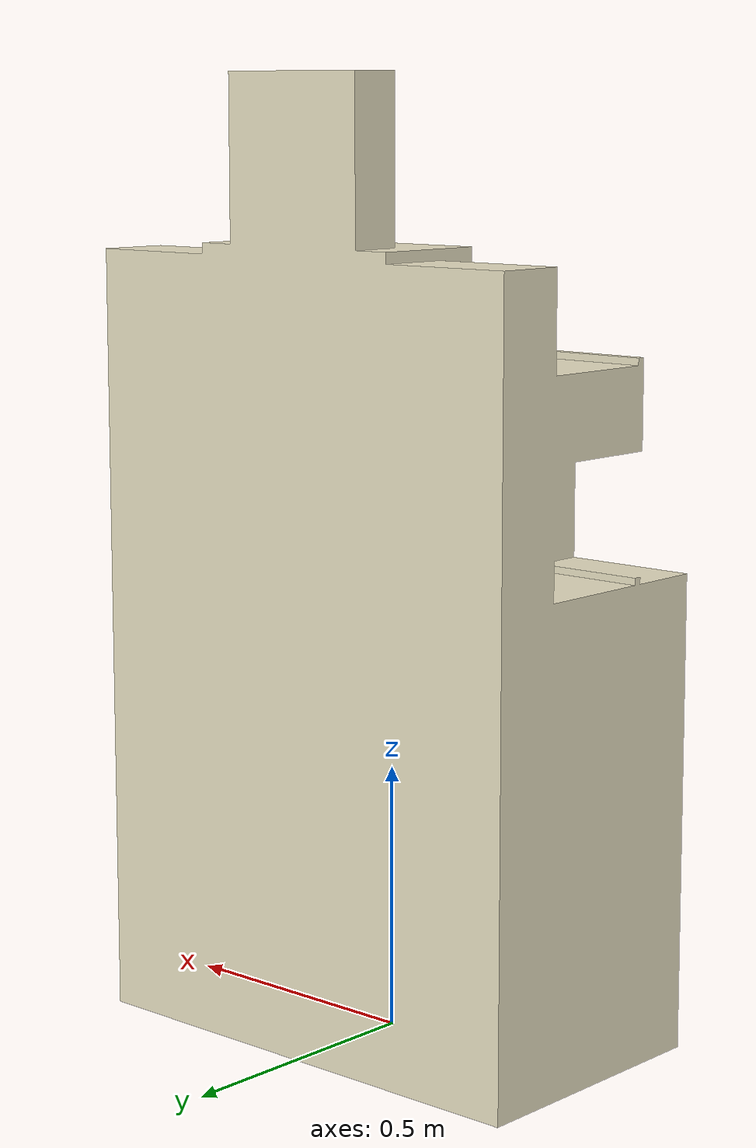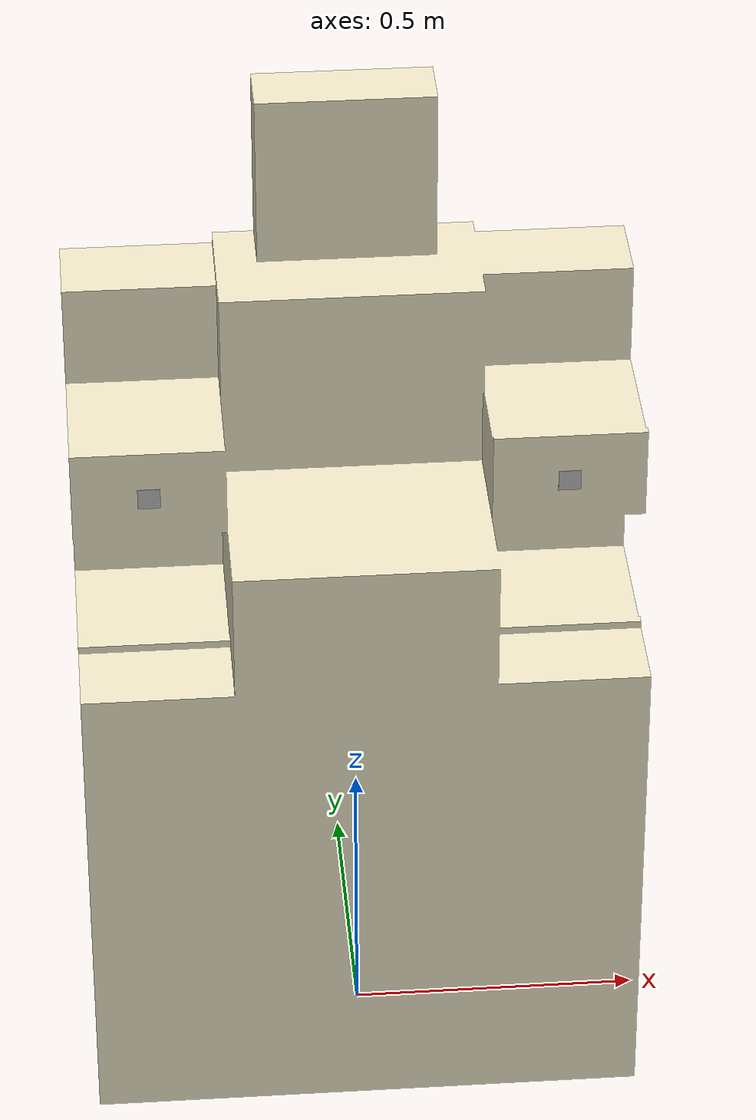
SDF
<?xml version='1.0'?>
<sdf version='1.7'>
  <model name='wirebonder'>
    <static>true</static>
    <pose>0 0 0 0 0 0</pose>
    <link name='wirebonder_link'>
      <pose>0 0 0 0 0 0</pose>
      <visual name='wirebonder_visual'>
        <geometry>
          <mesh>
            <uri>model://wirebonder/meshes/wirebonder.dae</uri>
          </mesh>
        </geometry>
      </visual>
      <visual name='aruco_G_L'>
        <pose>-0.348 -0.1205 1.2 1.5708 0 0</pose>
        <!-- 0.0375 = 0.03 tag + 1-module white quiet zone (texture is 640px =
             512 tag + 64 white each side); the BLACK tag stays 30 mm (TAG_SIZE_M). -->
        <geometry><box><size>0.0375 0.0375 0.001</size></box></geometry>
        <material><script>
          <uri>model://wirebonder/materials/scripts</uri>
          <uri>model://wirebonder/materials/textures</uri>
          <name>ArucoMarker/Marker0</name>
        </script></material>
      </visual>
      <visual name='aruco_G_R'>
        <pose>0.348 -0.1205 1.2 1.5708 0 0</pose>
        <!-- 0.0375 = 0.03 tag + 1-module white quiet zone (see aruco_G_L). -->
        <geometry><box><size>0.0375 0.0375 0.001</size></box></geometry>
        <material><script>
          <uri>model://wirebonder/materials/scripts</uri>
          <uri>model://wirebonder/materials/textures</uri>
          <name>ArucoMarker/Marker1</name>
        </script></material>
      </visual>
      <!-- per-part collision: one STL per box so the stepped recesses stay open -->
      <collision name='Cube_A'>
        <geometry><mesh><uri>model://wirebonder/collision/Cube_A.stl</uri></mesh></geometry>
      </collision>
      <collision name='Cube_B'>
        <geometry><mesh><uri>model://wirebonder/collision/Cube_B.stl</uri></mesh></geometry>
      </collision>
      <collision name='Cube_C'>
        <geometry><mesh><uri>model://wirebonder/collision/Cube_C.stl</uri></mesh></geometry>
      </collision>
      <collision name='Cube_D'>
        <geometry><mesh><uri>model://wirebonder/collision/Cube_D.stl</uri></mesh></geometry>
      </collision>
      <collision name='Cube_E'>
        <geometry><mesh><uri>model://wirebonder/collision/Cube_E.stl</uri></mesh></geometry>
      </collision>
      <collision name='Cube_F'>
        <geometry><mesh><uri>model://wirebonder/collision/Cube_F.stl</uri></mesh></geometry>
      </collision>
      <collision name='Cube_G_L'>
        <geometry><mesh><uri>model://wirebonder/collision/Cube_G_L.stl</uri></mesh></geometry>
      </collision>
      <collision name='Cube_G_R'>
        <geometry><mesh><uri>model://wirebonder/collision/Cube_G_R.stl</uri></mesh></geometry>
      </collision>
      <collision name='Cube_H_L'>
        <geometry><mesh><uri>model://wirebonder/collision/Cube_H_L.stl</uri></mesh></geometry>
      </collision>
      <collision name='Cube_H_R'>
        <geometry><mesh><uri>model://wirebonder/collision/Cube_H_R.stl</uri></mesh></geometry>
      </collision>
      <collision name='Cube_I'>
        <geometry><mesh><uri>model://wirebonder/collision/Cube_I.stl</uri></mesh></geometry>
      </collision>
    </link>
  </model>
</sdf>
